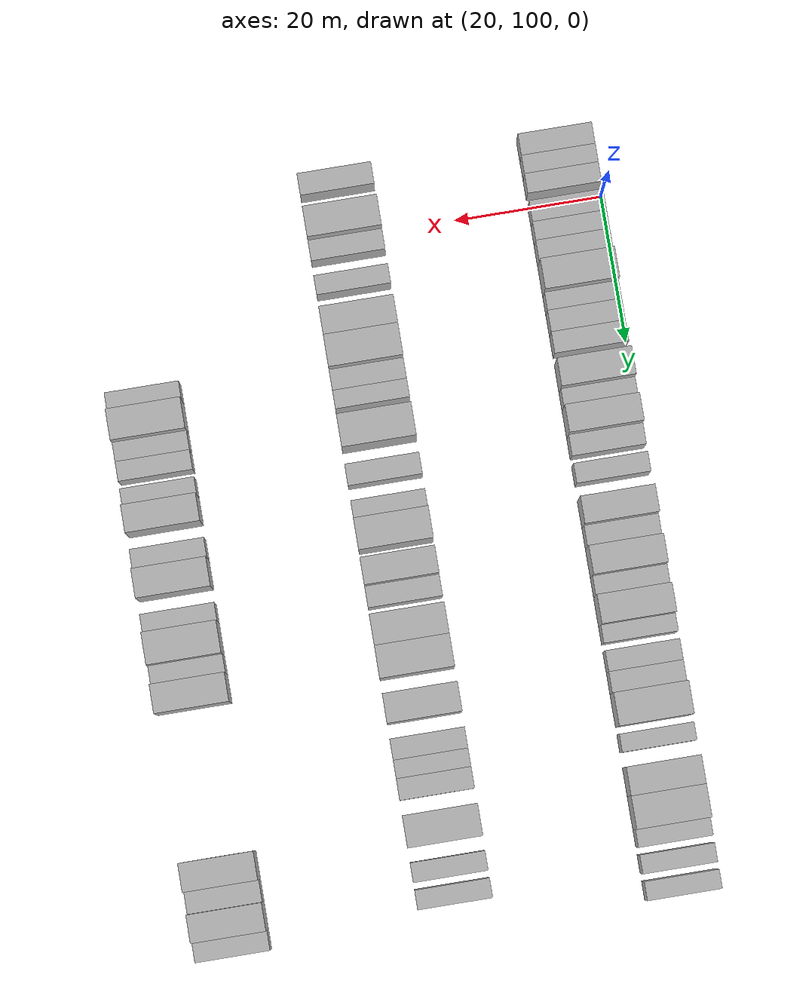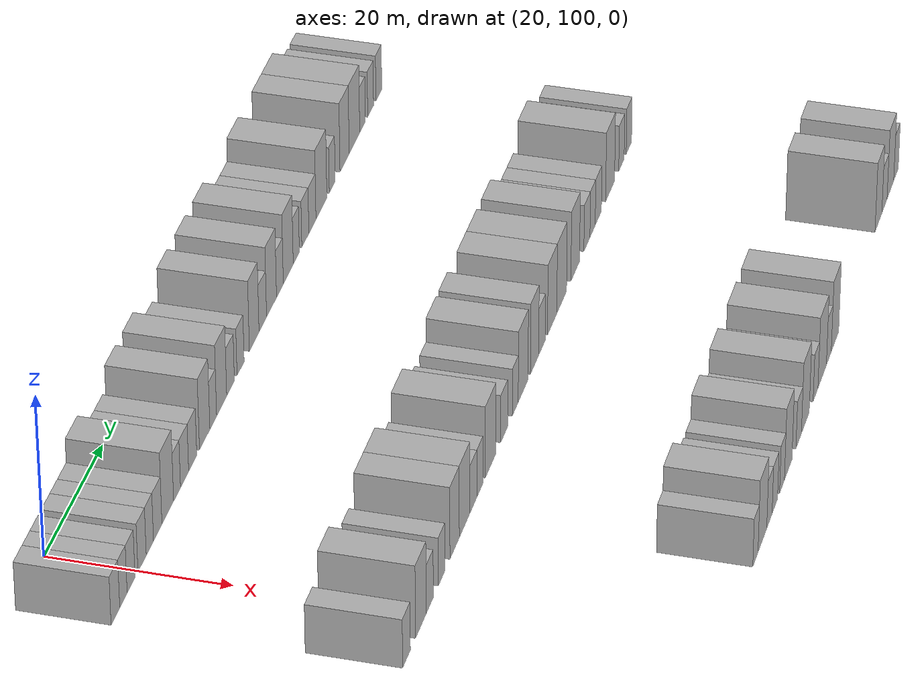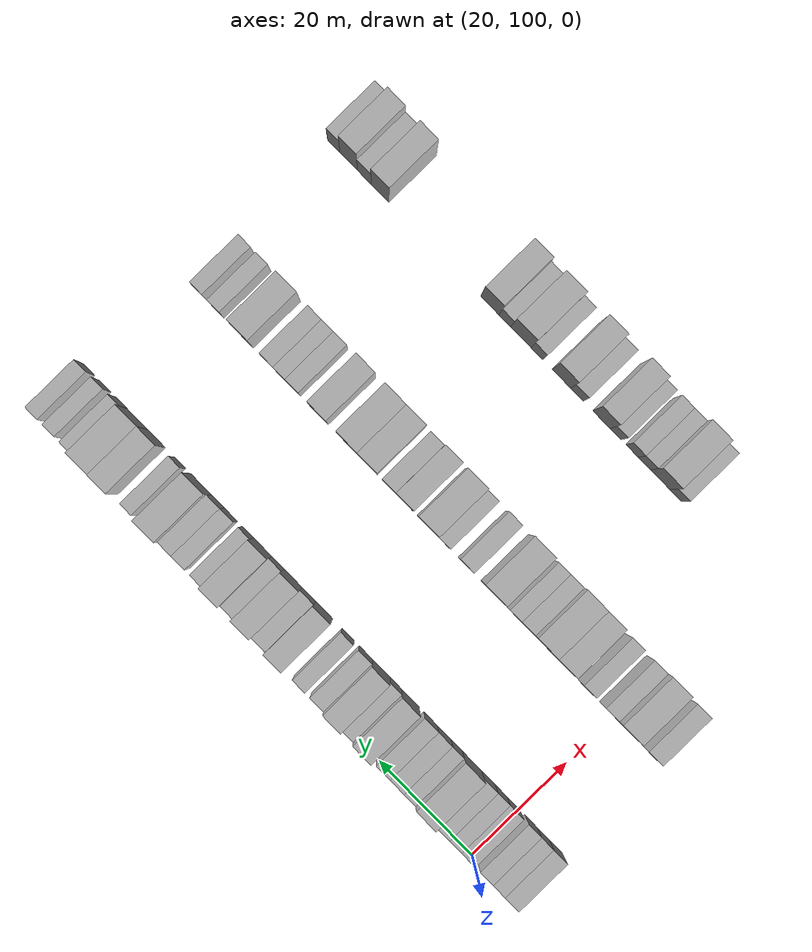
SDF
<sdf version="1.6">
 <world name="default">
  <model name="building_94">
   <static>1</static>
   <pose>25.0000 92.1856 0 0.000000 0.000000 0.000000</pose>
   <link name="link">
    <pose>0 0 3.00 0 0 0</pose>
    <collision name="collision"><geometry><box><size>10.0000 2.9241 6.0000</size></box></geometry></collision>
    <visual name="visual">
     <cast_shadows>0</cast_shadows>
     <geometry><box><size>10.0000 2.9241 6.0000</size></box></geometry>
     <material>
      <script>
       <uri>model://HANNAS_wall/materials/scripts</uri>
       <uri>model://HANNAS_wall/materials/textures</uri>
       <name>vrc/HANNAS_wall</name>
      </script>
     </material>
    </visual>
   </link>
  </model>
  <model name="building_95">
   <static>1</static>
   <pose>25.0000 94.9043 0 0.000000 0.000000 0.000000</pose>
   <link name="link">
    <pose>0 0 3.00 0 0 0</pose>
    <collision name="collision"><geometry><box><size>10.0000 2.5131 6.0000</size></box></geometry></collision>
    <visual name="visual">
     <cast_shadows>0</cast_shadows>
     <geometry><box><size>10.0000 2.5131 6.0000</size></box></geometry>
     <material>
      <script>
       <uri>model://HANNAS_wall/materials/scripts</uri>
       <uri>model://HANNAS_wall/materials/textures</uri>
       <name>vrc/HANNAS_wall</name>
      </script>
     </material>
    </visual>
   </link>
  </model>
  <model name="building_96">
   <static>1</static>
   <pose>25.0000 97.5082 0 0.000000 0.000000 0.000000</pose>
   <link name="link">
    <pose>0 0 3.00 0 0 0</pose>
    <collision name="collision"><geometry><box><size>10.0000 2.6948 6.0000</size></box></geometry></collision>
    <visual name="visual">
     <cast_shadows>0</cast_shadows>
     <geometry><box><size>10.0000 2.6948 6.0000</size></box></geometry>
     <material>
      <script>
       <uri>model://HANNAS_wall/materials/scripts</uri>
       <uri>model://HANNAS_wall/materials/textures</uri>
       <name>vrc/HANNAS_wall</name>
      </script>
     </material>
    </visual>
   </link>
  </model>
  <model name="building_97">
   <static>1</static>
   <pose>25.0000 101.2885 0 0.000000 0.000000 0.000000</pose>
   <link name="link">
    <pose>0 0 3.00 0 0 0</pose>
    <collision name="collision"><geometry><box><size>10.0000 2.8658 6.0000</size></box></geometry></collision>
    <visual name="visual">
     <cast_shadows>0</cast_shadows>
     <geometry><box><size>10.0000 2.8658 6.0000</size></box></geometry>
     <material>
      <script>
       <uri>model://HANNAS_wall/materials/scripts</uri>
       <uri>model://HANNAS_wall/materials/textures</uri>
       <name>vrc/HANNAS_wall</name>
      </script>
     </material>
    </visual>
   </link>
  </model>
  <model name="building_98">
   <static>1</static>
   <pose>25.0000 103.9885 0 0.000000 0.000000 0.000000</pose>
   <link name="link">
    <pose>0 0 3.00 0 0 0</pose>
    <collision name="collision"><geometry><box><size>10.0000 2.5341 6.0000</size></box></geometry></collision>
    <visual name="visual">
     <cast_shadows>0</cast_shadows>
     <geometry><box><size>10.0000 2.5341 6.0000</size></box></geometry>
     <material>
      <script>
       <uri>model://HANNAS_wall/materials/scripts</uri>
       <uri>model://HANNAS_wall/materials/textures</uri>
       <name>vrc/HANNAS_wall</name>
      </script>
     </material>
    </visual>
   </link>
  </model>
  <model name="building_99">
   <static>1</static>
   <pose>25.0000 106.7309 0 0.000000 0.000000 0.000000</pose>
   <link name="link">
    <pose>0 0 3.00 0 0 0</pose>
    <collision name="collision"><geometry><box><size>10.0000 2.9508 6.0000</size></box></geometry></collision>
    <visual name="visual">
     <cast_shadows>0</cast_shadows>
     <geometry><box><size>10.0000 2.9508 6.0000</size></box></geometry>
     <material>
      <script>
       <uri>model://HANNAS_wall/materials/scripts</uri>
       <uri>model://HANNAS_wall/materials/textures</uri>
       <name>vrc/HANNAS_wall</name>
      </script>
     </material>
    </visual>
   </link>
  </model>
  <model name="building_100">
   <static>1</static>
   <pose>25.0000 110.2745 0 0.000000 0.000000 0.000000</pose>
   <link name="link">
    <pose>0 0 4.50 0 0 0</pose>
    <collision name="collision"><geometry><box><size>10.0000 4.1362 9.0000</size></box></geometry></collision>
    <visual name="visual">
     <cast_shadows>0</cast_shadows>
     <geometry><box><size>10.0000 4.1362 9.0000</size></box></geometry>
     <material>
      <script>
       <uri>model://HANNAS_wall/materials/scripts</uri>
       <uri>model://HANNAS_wall/materials/textures</uri>
       <name>vrc/HANNAS_wall</name>
      </script>
     </material>
    </visual>
   </link>
  </model>
  <model name="building_101">
   <static>1</static>
   <pose>25.0000 113.5658 0 0.000000 0.000000 0.000000</pose>
   <link name="link">
    <pose>0 0 3.00 0 0 0</pose>
    <collision name="collision"><geometry><box><size>10.0000 2.4465 6.0000</size></box></geometry></collision>
    <visual name="visual">
     <cast_shadows>0</cast_shadows>
     <geometry><box><size>10.0000 2.4465 6.0000</size></box></geometry>
     <material>
      <script>
       <uri>model://HANNAS_wall/materials/scripts</uri>
       <uri>model://HANNAS_wall/materials/textures</uri>
       <name>vrc/HANNAS_wall</name>
      </script>
     </material>
    </visual>
   </link>
  </model>
  <model name="building_102">
   <static>1</static>
   <pose>25.0000 116.2530 0 0.000000 0.000000 0.000000</pose>
   <link name="link">
    <pose>0 0 3.00 0 0 0</pose>
    <collision name="collision"><geometry><box><size>10.0000 2.9277 6.0000</size></box></geometry></collision>
    <visual name="visual">
     <cast_shadows>0</cast_shadows>
     <geometry><box><size>10.0000 2.9277 6.0000</size></box></geometry>
     <material>
      <script>
       <uri>model://HANNAS_wall/materials/scripts</uri>
       <uri>model://HANNAS_wall/materials/textures</uri>
       <name>vrc/HANNAS_wall</name>
      </script>
     </material>
    </visual>
   </link>
  </model>
  <model name="building_103">
   <static>1</static>
   <pose>25.0000 119.1795 0 0.000000 0.000000 0.000000</pose>
   <link name="link">
    <pose>0 0 3.00 0 0 0</pose>
    <collision name="collision"><geometry><box><size>10.0000 2.9253 6.0000</size></box></geometry></collision>
    <visual name="visual">
     <cast_shadows>0</cast_shadows>
     <geometry><box><size>10.0000 2.9253 6.0000</size></box></geometry>
     <material>
      <script>
       <uri>model://HANNAS_wall/materials/scripts</uri>
       <uri>model://HANNAS_wall/materials/textures</uri>
       <name>vrc/HANNAS_wall</name>
      </script>
     </material>
    </visual>
   </link>
  </model>
  <model name="building_104">
   <static>1</static>
   <pose>25.0000 123.5432 0 0.000000 0.000000 0.000000</pose>
   <link name="link">
    <pose>0 0 4.50 0 0 0</pose>
    <collision name="collision"><geometry><box><size>10.0000 3.8021 9.0000</size></box></geometry></collision>
    <visual name="visual">
     <cast_shadows>0</cast_shadows>
     <geometry><box><size>10.0000 3.8021 9.0000</size></box></geometry>
     <material>
      <script>
       <uri>model://HANNAS_wall/materials/scripts</uri>
       <uri>model://HANNAS_wall/materials/textures</uri>
       <name>vrc/HANNAS_wall</name>
      </script>
     </material>
    </visual>
   </link>
  </model>
  <model name="building_105">
   <static>1</static>
   <pose>25.0000 126.6837 0 0.000000 0.000000 0.000000</pose>
   <link name="link">
    <pose>0 0 3.00 0 0 0</pose>
    <collision name="collision"><geometry><box><size>10.0000 2.4789 6.0000</size></box></geometry></collision>
    <visual name="visual">
     <cast_shadows>0</cast_shadows>
     <geometry><box><size>10.0000 2.4789 6.0000</size></box></geometry>
     <material>
      <script>
       <uri>model://HANNAS_wall/materials/scripts</uri>
       <uri>model://HANNAS_wall/materials/textures</uri>
       <name>vrc/HANNAS_wall</name>
      </script>
     </material>
    </visual>
   </link>
  </model>
  <model name="building_106">
   <static>1</static>
   <pose>25.0000 129.7992 0 0.000000 0.000000 0.000000</pose>
   <link name="link">
    <pose>0 0 4.50 0 0 0</pose>
    <collision name="collision"><geometry><box><size>10.0000 3.7522 9.0000</size></box></geometry></collision>
    <visual name="visual">
     <cast_shadows>0</cast_shadows>
     <geometry><box><size>10.0000 3.7522 9.0000</size></box></geometry>
     <material>
      <script>
       <uri>model://HANNAS_wall/materials/scripts</uri>
       <uri>model://HANNAS_wall/materials/textures</uri>
       <name>vrc/HANNAS_wall</name>
      </script>
     </material>
    </visual>
   </link>
  </model>
  <model name="building_107">
   <static>1</static>
   <pose>25.0000 133.1132 0 0.000000 0.000000 0.000000</pose>
   <link name="link">
    <pose>0 0 3.00 0 0 0</pose>
    <collision name="collision"><geometry><box><size>10.0000 2.8758 6.0000</size></box></geometry></collision>
    <visual name="visual">
     <cast_shadows>0</cast_shadows>
     <geometry><box><size>10.0000 2.8758 6.0000</size></box></geometry>
     <material>
      <script>
       <uri>model://HANNAS_wall/materials/scripts</uri>
       <uri>model://HANNAS_wall/materials/textures</uri>
       <name>vrc/HANNAS_wall</name>
      </script>
     </material>
    </visual>
   </link>
  </model>
  <model name="building_108">
   <static>1</static>
   <pose>25.0000 136.8943 0 0.000000 0.000000 0.000000</pose>
   <link name="link">
    <pose>0 0 3.00 0 0 0</pose>
    <collision name="collision"><geometry><box><size>10.0000 2.6863 6.0000</size></box></geometry></collision>
    <visual name="visual">
     <cast_shadows>0</cast_shadows>
     <geometry><box><size>10.0000 2.6863 6.0000</size></box></geometry>
     <material>
      <script>
       <uri>model://HANNAS_wall/materials/scripts</uri>
       <uri>model://HANNAS_wall/materials/textures</uri>
       <name>vrc/HANNAS_wall</name>
      </script>
     </material>
    </visual>
   </link>
  </model>
  <model name="building_109">
   <static>1</static>
   <pose>25.0000 142.0820 0 0.000000 0.000000 0.000000</pose>
   <link name="link">
    <pose>0 0 4.50 0 0 0</pose>
    <collision name="collision"><geometry><box><size>10.0000 3.6891 9.0000</size></box></geometry></collision>
    <visual name="visual">
     <cast_shadows>0</cast_shadows>
     <geometry><box><size>10.0000 3.6891 9.0000</size></box></geometry>
     <material>
      <script>
       <uri>model://HANNAS_wall/materials/scripts</uri>
       <uri>model://HANNAS_wall/materials/textures</uri>
       <name>vrc/HANNAS_wall</name>
      </script>
     </material>
    </visual>
   </link>
  </model>
  <model name="building_110">
   <static>1</static>
   <pose>25.0000 145.3832 0 0.000000 0.000000 0.000000</pose>
   <link name="link">
    <pose>0 0 3.00 0 0 0</pose>
    <collision name="collision"><geometry><box><size>10.0000 2.9133 6.0000</size></box></geometry></collision>
    <visual name="visual">
     <cast_shadows>0</cast_shadows>
     <geometry><box><size>10.0000 2.9133 6.0000</size></box></geometry>
     <material>
      <script>
       <uri>model://HANNAS_wall/materials/scripts</uri>
       <uri>model://HANNAS_wall/materials/textures</uri>
       <name>vrc/HANNAS_wall</name>
      </script>
     </material>
    </visual>
   </link>
  </model>
  <model name="building_111">
   <static>1</static>
   <pose>25.0000 148.7778 0 0.000000 0.000000 0.000000</pose>
   <link name="link">
    <pose>0 0 4.50 0 0 0</pose>
    <collision name="collision"><geometry><box><size>10.0000 3.8758 9.0000</size></box></geometry></collision>
    <visual name="visual">
     <cast_shadows>0</cast_shadows>
     <geometry><box><size>10.0000 3.8758 9.0000</size></box></geometry>
     <material>
      <script>
       <uri>model://HANNAS_wall/materials/scripts</uri>
       <uri>model://HANNAS_wall/materials/textures</uri>
       <name>vrc/HANNAS_wall</name>
      </script>
     </material>
    </visual>
   </link>
  </model>
  <model name="building_112">
   <static>1</static>
   <pose>25.0000 152.0493 0 0.000000 0.000000 0.000000</pose>
   <link name="link">
    <pose>0 0 3.00 0 0 0</pose>
    <collision name="collision"><geometry><box><size>10.0000 2.6670 6.0000</size></box></geometry></collision>
    <visual name="visual">
     <cast_shadows>0</cast_shadows>
     <geometry><box><size>10.0000 2.6670 6.0000</size></box></geometry>
     <material>
      <script>
       <uri>model://HANNAS_wall/materials/scripts</uri>
       <uri>model://HANNAS_wall/materials/textures</uri>
       <name>vrc/HANNAS_wall</name>
      </script>
     </material>
    </visual>
   </link>
  </model>
  <model name="building_113">
   <static>1</static>
   <pose>25.0000 155.3504 0 0.000000 0.000000 0.000000</pose>
   <link name="link">
    <pose>0 0 4.50 0 0 0</pose>
    <collision name="collision"><geometry><box><size>10.0000 3.9352 9.0000</size></box></geometry></collision>
    <visual name="visual">
     <cast_shadows>0</cast_shadows>
     <geometry><box><size>10.0000 3.9352 9.0000</size></box></geometry>
     <material>
      <script>
       <uri>model://HANNAS_wall/materials/scripts</uri>
       <uri>model://HANNAS_wall/materials/textures</uri>
       <name>vrc/HANNAS_wall</name>
      </script>
     </material>
    </visual>
   </link>
  </model>
  <model name="building_114">
   <static>1</static>
   <pose>25.0000 158.5378 0 0.000000 0.000000 0.000000</pose>
   <link name="link">
    <pose>0 0 3.00 0 0 0</pose>
    <collision name="collision"><geometry><box><size>10.0000 2.4395 6.0000</size></box></geometry></collision>
    <visual name="visual">
     <cast_shadows>0</cast_shadows>
     <geometry><box><size>10.0000 2.4395 6.0000</size></box></geometry>
     <material>
      <script>
       <uri>model://HANNAS_wall/materials/scripts</uri>
       <uri>model://HANNAS_wall/materials/textures</uri>
       <name>vrc/HANNAS_wall</name>
      </script>
     </material>
    </visual>
   </link>
  </model>
  <model name="building_115">
   <static>1</static>
   <pose>25.0000 162.1688 0 0.000000 0.000000 0.000000</pose>
   <link name="link">
    <pose>0 0 3.00 0 0 0</pose>
    <collision name="collision"><geometry><box><size>10.0000 2.8226 6.0000</size></box></geometry></collision>
    <visual name="visual">
     <cast_shadows>0</cast_shadows>
     <geometry><box><size>10.0000 2.8226 6.0000</size></box></geometry>
     <material>
      <script>
       <uri>model://HANNAS_wall/materials/scripts</uri>
       <uri>model://HANNAS_wall/materials/textures</uri>
       <name>vrc/HANNAS_wall</name>
      </script>
     </material>
    </visual>
   </link>
  </model>
  <model name="building_116">
   <static>1</static>
   <pose>25.0000 165.0197 0 0.000000 0.000000 0.000000</pose>
   <link name="link">
    <pose>0 0 3.00 0 0 0</pose>
    <collision name="collision"><geometry><box><size>10.0000 2.8792 6.0000</size></box></geometry></collision>
    <visual name="visual">
     <cast_shadows>0</cast_shadows>
     <geometry><box><size>10.0000 2.8792 6.0000</size></box></geometry>
     <material>
      <script>
       <uri>model://HANNAS_wall/materials/scripts</uri>
       <uri>model://HANNAS_wall/materials/textures</uri>
       <name>vrc/HANNAS_wall</name>
      </script>
     </material>
    </visual>
   </link>
  </model>
  <model name="building_117">
   <static>1</static>
   <pose>25.0000 168.6905 0 0.000000 0.000000 0.000000</pose>
   <link name="link">
    <pose>0 0 4.50 0 0 0</pose>
    <collision name="collision"><geometry><box><size>10.0000 4.4623 9.0000</size></box></geometry></collision>
    <visual name="visual">
     <cast_shadows>0</cast_shadows>
     <geometry><box><size>10.0000 4.4623 9.0000</size></box></geometry>
     <material>
      <script>
       <uri>model://HANNAS_wall/materials/scripts</uri>
       <uri>model://HANNAS_wall/materials/textures</uri>
       <name>vrc/HANNAS_wall</name>
      </script>
     </material>
    </visual>
   </link>
  </model>
  <model name="building_118">
   <static>1</static>
   <pose>25.0000 173.1376 0 0.000000 0.000000 0.000000</pose>
   <link name="link">
    <pose>0 0 3.00 0 0 0</pose>
    <collision name="collision"><geometry><box><size>10.0000 2.4320 6.0000</size></box></geometry></collision>
    <visual name="visual">
     <cast_shadows>0</cast_shadows>
     <geometry><box><size>10.0000 2.4320 6.0000</size></box></geometry>
     <material>
      <script>
       <uri>model://HANNAS_wall/materials/scripts</uri>
       <uri>model://HANNAS_wall/materials/textures</uri>
       <name>vrc/HANNAS_wall</name>
      </script>
     </material>
    </visual>
   </link>
  </model>
  <model name="building_119">
   <static>1</static>
   <pose>25.0000 178.2731 0 0.000000 0.000000 0.000000</pose>
   <link name="link">
    <pose>0 0 4.50 0 0 0</pose>
    <collision name="collision"><geometry><box><size>10.0000 3.8389 9.0000</size></box></geometry></collision>
    <visual name="visual">
     <cast_shadows>0</cast_shadows>
     <geometry><box><size>10.0000 3.8389 9.0000</size></box></geometry>
     <material>
      <script>
       <uri>model://HANNAS_wall/materials/scripts</uri>
       <uri>model://HANNAS_wall/materials/textures</uri>
       <name>vrc/HANNAS_wall</name>
      </script>
     </material>
    </visual>
   </link>
  </model>
  <model name="building_120">
   <static>1</static>
   <pose>25.0000 182.4150 0 0.000000 0.000000 0.000000</pose>
   <link name="link">
    <pose>0 0 4.50 0 0 0</pose>
    <collision name="collision"><geometry><box><size>10.0000 4.4450 9.0000</size></box></geometry></collision>
    <visual name="visual">
     <cast_shadows>0</cast_shadows>
     <geometry><box><size>10.0000 4.4450 9.0000</size></box></geometry>
     <material>
      <script>
       <uri>model://HANNAS_wall/materials/scripts</uri>
       <uri>model://HANNAS_wall/materials/textures</uri>
       <name>vrc/HANNAS_wall</name>
      </script>
     </material>
    </visual>
   </link>
  </model>
  <model name="building_121">
   <static>1</static>
   <pose>25.0000 185.8435 0 0.000000 0.000000 0.000000</pose>
   <link name="link">
    <pose>0 0 3.00 0 0 0</pose>
    <collision name="collision"><geometry><box><size>10.0000 2.4121 6.0000</size></box></geometry></collision>
    <visual name="visual">
     <cast_shadows>0</cast_shadows>
     <geometry><box><size>10.0000 2.4121 6.0000</size></box></geometry>
     <material>
      <script>
       <uri>model://HANNAS_wall/materials/scripts</uri>
       <uri>model://HANNAS_wall/materials/textures</uri>
       <name>vrc/HANNAS_wall</name>
      </script>
     </material>
    </visual>
   </link>
  </model>
  <model name="building_122">
   <static>1</static>
   <pose>25.0000 189.3142 0 0.000000 0.000000 0.000000</pose>
   <link name="link">
    <pose>0 0 3.00 0 0 0</pose>
    <collision name="collision"><geometry><box><size>10.0000 2.5292 6.0000</size></box></geometry></collision>
    <visual name="visual">
     <cast_shadows>0</cast_shadows>
     <geometry><box><size>10.0000 2.5292 6.0000</size></box></geometry>
     <material>
      <script>
       <uri>model://HANNAS_wall/materials/scripts</uri>
       <uri>model://HANNAS_wall/materials/textures</uri>
       <name>vrc/HANNAS_wall</name>
      </script>
     </material>
    </visual>
   </link>
  </model>
  <model name="building_123">
   <static>1</static>
   <pose>25.0000 192.8524 0 0.000000 0.000000 0.000000</pose>
   <link name="link">
    <pose>0 0 3.00 0 0 0</pose>
    <collision name="collision"><geometry><box><size>10.0000 2.5472 6.0000</size></box></geometry></collision>
    <visual name="visual">
     <cast_shadows>0</cast_shadows>
     <geometry><box><size>10.0000 2.5472 6.0000</size></box></geometry>
     <material>
      <script>
       <uri>model://HANNAS_wall/materials/scripts</uri>
       <uri>model://HANNAS_wall/materials/textures</uri>
       <name>vrc/HANNAS_wall</name>
      </script>
     </material>
    </visual>
   </link>
  </model>
  <model name="building_233">
   <static>1</static>
   <pose>55.0000 92.6903 0 0.000000 0.000000 0.000000</pose>
   <link name="link">
    <pose>0 0 3.00 0 0 0</pose>
    <collision name="collision"><geometry><box><size>10.0000 2.9807 6.0000</size></box></geometry></collision>
    <visual name="visual">
     <cast_shadows>0</cast_shadows>
     <geometry><box><size>10.0000 2.9807 6.0000</size></box></geometry>
     <material>
      <script>
       <uri>model://HANNAS_wall/materials/scripts</uri>
       <uri>model://HANNAS_wall/materials/textures</uri>
       <name>vrc/HANNAS_wall</name>
      </script>
     </material>
    </visual>
   </link>
  </model>
  <model name="building_234">
   <static>1</static>
   <pose>55.0000 98.2577 0 0.000000 0.000000 0.000000</pose>
   <link name="link">
    <pose>0 0 4.50 0 0 0</pose>
    <collision name="collision"><geometry><box><size>10.0000 4.1539 9.0000</size></box></geometry></collision>
    <visual name="visual">
     <cast_shadows>0</cast_shadows>
     <geometry><box><size>10.0000 4.1539 9.0000</size></box></geometry>
     <material>
      <script>
       <uri>model://HANNAS_wall/materials/scripts</uri>
       <uri>model://HANNAS_wall/materials/textures</uri>
       <name>vrc/HANNAS_wall</name>
      </script>
     </material>
    </visual>
   </link>
  </model>
  <model name="building_235">
   <static>1</static>
   <pose>55.0000 101.7329 0 0.000000 0.000000 0.000000</pose>
   <link name="link">
    <pose>0 0 3.00 0 0 0</pose>
    <collision name="collision"><geometry><box><size>10.0000 2.7966 6.0000</size></box></geometry></collision>
    <visual name="visual">
     <cast_shadows>0</cast_shadows>
     <geometry><box><size>10.0000 2.7966 6.0000</size></box></geometry>
     <material>
      <script>
       <uri>model://HANNAS_wall/materials/scripts</uri>
       <uri>model://HANNAS_wall/materials/textures</uri>
       <name>vrc/HANNAS_wall</name>
      </script>
     </material>
    </visual>
   </link>
  </model>
  <model name="building_236">
   <static>1</static>
   <pose>55.0000 106.4436 0 0.000000 0.000000 0.000000</pose>
   <link name="link">
    <pose>0 0 3.00 0 0 0</pose>
    <collision name="collision"><geometry><box><size>10.0000 2.6247 6.0000</size></box></geometry></collision>
    <visual name="visual">
     <cast_shadows>0</cast_shadows>
     <geometry><box><size>10.0000 2.6247 6.0000</size></box></geometry>
     <material>
      <script>
       <uri>model://HANNAS_wall/materials/scripts</uri>
       <uri>model://HANNAS_wall/materials/textures</uri>
       <name>vrc/HANNAS_wall</name>
      </script>
     </material>
    </visual>
   </link>
  </model>
  <model name="building_237">
   <static>1</static>
   <pose>55.0000 111.6458 0 0.000000 0.000000 0.000000</pose>
   <link name="link">
    <pose>0 0 4.50 0 0 0</pose>
    <collision name="collision"><geometry><box><size>10.0000 3.7799 9.0000</size></box></geometry></collision>
    <visual name="visual">
     <cast_shadows>0</cast_shadows>
     <geometry><box><size>10.0000 3.7799 9.0000</size></box></geometry>
     <material>
      <script>
       <uri>model://HANNAS_wall/materials/scripts</uri>
       <uri>model://HANNAS_wall/materials/textures</uri>
       <name>vrc/HANNAS_wall</name>
      </script>
     </material>
    </visual>
   </link>
  </model>
  <model name="building_238">
   <static>1</static>
   <pose>55.0000 115.7148 0 0.000000 0.000000 0.000000</pose>
   <link name="link">
    <pose>0 0 4.50 0 0 0</pose>
    <collision name="collision"><geometry><box><size>10.0000 4.3580 9.0000</size></box></geometry></collision>
    <visual name="visual">
     <cast_shadows>0</cast_shadows>
     <geometry><box><size>10.0000 4.3580 9.0000</size></box></geometry>
     <material>
      <script>
       <uri>model://HANNAS_wall/materials/scripts</uri>
       <uri>model://HANNAS_wall/materials/textures</uri>
       <name>vrc/HANNAS_wall</name>
      </script>
     </material>
    </visual>
   </link>
  </model>
  <model name="building_239">
   <static>1</static>
   <pose>55.0000 119.3050 0 0.000000 0.000000 0.000000</pose>
   <link name="link">
    <pose>0 0 3.00 0 0 0</pose>
    <collision name="collision"><geometry><box><size>10.0000 2.8224 6.0000</size></box></geometry></collision>
    <visual name="visual">
     <cast_shadows>0</cast_shadows>
     <geometry><box><size>10.0000 2.8224 6.0000</size></box></geometry>
     <material>
      <script>
       <uri>model://HANNAS_wall/materials/scripts</uri>
       <uri>model://HANNAS_wall/materials/textures</uri>
       <name>vrc/HANNAS_wall</name>
      </script>
     </material>
    </visual>
   </link>
  </model>
  <model name="building_240">
   <static>1</static>
   <pose>55.0000 121.9758 0 0.000000 0.000000 0.000000</pose>
   <link name="link">
    <pose>0 0 3.00 0 0 0</pose>
    <collision name="collision"><geometry><box><size>10.0000 2.5193 6.0000</size></box></geometry></collision>
    <visual name="visual">
     <cast_shadows>0</cast_shadows>
     <geometry><box><size>10.0000 2.5193 6.0000</size></box></geometry>
     <material>
      <script>
       <uri>model://HANNAS_wall/materials/scripts</uri>
       <uri>model://HANNAS_wall/materials/textures</uri>
       <name>vrc/HANNAS_wall</name>
      </script>
     </material>
    </visual>
   </link>
  </model>
  <model name="building_241">
   <static>1</static>
   <pose>55.0000 126.4719 0 0.000000 0.000000 0.000000</pose>
   <link name="link">
    <pose>0 0 4.50 0 0 0</pose>
    <collision name="collision"><geometry><box><size>10.0000 4.4729 9.0000</size></box></geometry></collision>
    <visual name="visual">
     <cast_shadows>0</cast_shadows>
     <geometry><box><size>10.0000 4.4729 9.0000</size></box></geometry>
     <material>
      <script>
       <uri>model://HANNAS_wall/materials/scripts</uri>
       <uri>model://HANNAS_wall/materials/textures</uri>
       <name>vrc/HANNAS_wall</name>
      </script>
     </material>
    </visual>
   </link>
  </model>
  <model name="building_242">
   <static>1</static>
   <pose>55.0000 132.1715 0 0.000000 0.000000 0.000000</pose>
   <link name="link">
    <pose>0 0 3.00 0 0 0</pose>
    <collision name="collision"><geometry><box><size>10.0000 2.9263 6.0000</size></box></geometry></collision>
    <visual name="visual">
     <cast_shadows>0</cast_shadows>
     <geometry><box><size>10.0000 2.9263 6.0000</size></box></geometry>
     <material>
      <script>
       <uri>model://HANNAS_wall/materials/scripts</uri>
       <uri>model://HANNAS_wall/materials/textures</uri>
       <name>vrc/HANNAS_wall</name>
      </script>
     </material>
    </visual>
   </link>
  </model>
  <model name="building_243">
   <static>1</static>
   <pose>55.0000 136.9166 0 0.000000 0.000000 0.000000</pose>
   <link name="link">
    <pose>0 0 3.00 0 0 0</pose>
    <collision name="collision"><geometry><box><size>10.0000 2.5640 6.0000</size></box></geometry></collision>
    <visual name="visual">
     <cast_shadows>0</cast_shadows>
     <geometry><box><size>10.0000 2.5640 6.0000</size></box></geometry>
     <material>
      <script>
       <uri>model://HANNAS_wall/materials/scripts</uri>
       <uri>model://HANNAS_wall/materials/textures</uri>
       <name>vrc/HANNAS_wall</name>
      </script>
     </material>
    </visual>
   </link>
  </model>
  <model name="building_244">
   <static>1</static>
   <pose>55.0000 140.3405 0 0.000000 0.000000 0.000000</pose>
   <link name="link">
    <pose>0 0 4.50 0 0 0</pose>
    <collision name="collision"><geometry><box><size>10.0000 4.2837 9.0000</size></box></geometry></collision>
    <visual name="visual">
     <cast_shadows>0</cast_shadows>
     <geometry><box><size>10.0000 4.2837 9.0000</size></box></geometry>
     <material>
      <script>
       <uri>model://HANNAS_wall/materials/scripts</uri>
       <uri>model://HANNAS_wall/materials/textures</uri>
       <name>vrc/HANNAS_wall</name>
      </script>
     </material>
    </visual>
   </link>
  </model>
  <model name="building_245">
   <static>1</static>
   <pose>55.0000 145.3233 0 0.000000 0.000000 0.000000</pose>
   <link name="link">
    <pose>0 0 4.50 0 0 0</pose>
    <collision name="collision"><geometry><box><size>10.0000 3.6820 9.0000</size></box></geometry></collision>
    <visual name="visual">
     <cast_shadows>0</cast_shadows>
     <geometry><box><size>10.0000 3.6820 9.0000</size></box></geometry>
     <material>
      <script>
       <uri>model://HANNAS_wall/materials/scripts</uri>
       <uri>model://HANNAS_wall/materials/textures</uri>
       <name>vrc/HANNAS_wall</name>
      </script>
     </material>
    </visual>
   </link>
  </model>
  <model name="building_246">
   <static>1</static>
   <pose>55.0000 148.6158 0 0.000000 0.000000 0.000000</pose>
   <link name="link">
    <pose>0 0 3.00 0 0 0</pose>
    <collision name="collision"><geometry><box><size>10.0000 2.9030 6.0000</size></box></geometry></collision>
    <visual name="visual">
     <cast_shadows>0</cast_shadows>
     <geometry><box><size>10.0000 2.9030 6.0000</size></box></geometry>
     <material>
      <script>
       <uri>model://HANNAS_wall/materials/scripts</uri>
       <uri>model://HANNAS_wall/materials/textures</uri>
       <name>vrc/HANNAS_wall</name>
      </script>
     </material>
    </visual>
   </link>
  </model>
  <model name="building_247">
   <static>1</static>
   <pose>55.0000 153.1550 0 0.000000 0.000000 0.000000</pose>
   <link name="link">
    <pose>0 0 4.50 0 0 0</pose>
    <collision name="collision"><geometry><box><size>10.0000 4.1754 9.0000</size></box></geometry></collision>
    <visual name="visual">
     <cast_shadows>0</cast_shadows>
     <geometry><box><size>10.0000 4.1754 9.0000</size></box></geometry>
     <material>
      <script>
       <uri>model://HANNAS_wall/materials/scripts</uri>
       <uri>model://HANNAS_wall/materials/textures</uri>
       <name>vrc/HANNAS_wall</name>
      </script>
     </material>
    </visual>
   </link>
  </model>
  <model name="building_248">
   <static>1</static>
   <pose>55.0000 157.4451 0 0.000000 0.000000 0.000000</pose>
   <link name="link">
    <pose>0 0 4.50 0 0 0</pose>
    <collision name="collision"><geometry><box><size>10.0000 4.4048 9.0000</size></box></geometry></collision>
    <visual name="visual">
     <cast_shadows>0</cast_shadows>
     <geometry><box><size>10.0000 4.4048 9.0000</size></box></geometry>
     <material>
      <script>
       <uri>model://HANNAS_wall/materials/scripts</uri>
       <uri>model://HANNAS_wall/materials/textures</uri>
       <name>vrc/HANNAS_wall</name>
      </script>
     </material>
    </visual>
   </link>
  </model>
  <model name="building_249">
   <static>1</static>
   <pose>55.0000 163.6390 0 0.000000 0.000000 0.000000</pose>
   <link name="link">
    <pose>0 0 4.50 0 0 0</pose>
    <collision name="collision"><geometry><box><size>10.0000 3.9830 9.0000</size></box></geometry></collision>
    <visual name="visual">
     <cast_shadows>0</cast_shadows>
     <geometry><box><size>10.0000 3.9830 9.0000</size></box></geometry>
     <material>
      <script>
       <uri>model://HANNAS_wall/materials/scripts</uri>
       <uri>model://HANNAS_wall/materials/textures</uri>
       <name>vrc/HANNAS_wall</name>
      </script>
     </material>
    </visual>
   </link>
  </model>
  <model name="building_250">
   <static>1</static>
   <pose>55.0000 169.0469 0 0.000000 0.000000 0.000000</pose>
   <link name="link">
    <pose>0 0 3.00 0 0 0</pose>
    <collision name="collision"><geometry><box><size>10.0000 2.8330 6.0000</size></box></geometry></collision>
    <visual name="visual">
     <cast_shadows>0</cast_shadows>
     <geometry><box><size>10.0000 2.8330 6.0000</size></box></geometry>
     <material>
      <script>
       <uri>model://HANNAS_wall/materials/scripts</uri>
       <uri>model://HANNAS_wall/materials/textures</uri>
       <name>vrc/HANNAS_wall</name>
      </script>
     </material>
    </visual>
   </link>
  </model>
  <model name="building_251">
   <static>1</static>
   <pose>55.0000 171.6985 0 0.000000 0.000000 0.000000</pose>
   <link name="link">
    <pose>0 0 3.00 0 0 0</pose>
    <collision name="collision"><geometry><box><size>10.0000 2.4701 6.0000</size></box></geometry></collision>
    <visual name="visual">
     <cast_shadows>0</cast_shadows>
     <geometry><box><size>10.0000 2.4701 6.0000</size></box></geometry>
     <material>
      <script>
       <uri>model://HANNAS_wall/materials/scripts</uri>
       <uri>model://HANNAS_wall/materials/textures</uri>
       <name>vrc/HANNAS_wall</name>
      </script>
     </material>
    </visual>
   </link>
  </model>
  <model name="building_252">
   <static>1</static>
   <pose>55.0000 174.3896 0 0.000000 0.000000 0.000000</pose>
   <link name="link">
    <pose>0 0 3.00 0 0 0</pose>
    <collision name="collision"><geometry><box><size>10.0000 2.9122 6.0000</size></box></geometry></collision>
    <visual name="visual">
     <cast_shadows>0</cast_shadows>
     <geometry><box><size>10.0000 2.9122 6.0000</size></box></geometry>
     <material>
      <script>
       <uri>model://HANNAS_wall/materials/scripts</uri>
       <uri>model://HANNAS_wall/materials/textures</uri>
       <name>vrc/HANNAS_wall</name>
      </script>
     </material>
    </visual>
   </link>
  </model>
  <model name="building_253">
   <static>1</static>
   <pose>55.0000 179.9971 0 0.000000 0.000000 0.000000</pose>
   <link name="link">
    <pose>0 0 4.50 0 0 0</pose>
    <collision name="collision"><geometry><box><size>10.0000 4.3028 9.0000</size></box></geometry></collision>
    <visual name="visual">
     <cast_shadows>0</cast_shadows>
     <geometry><box><size>10.0000 4.3028 9.0000</size></box></geometry>
     <material>
      <script>
       <uri>model://HANNAS_wall/materials/scripts</uri>
       <uri>model://HANNAS_wall/materials/textures</uri>
       <name>vrc/HANNAS_wall</name>
      </script>
     </material>
    </visual>
   </link>
  </model>
  <model name="building_254">
   <static>1</static>
   <pose>55.0000 185.4600 0 0.000000 0.000000 0.000000</pose>
   <link name="link">
    <pose>0 0 3.00 0 0 0</pose>
    <collision name="collision"><geometry><box><size>10.0000 2.6230 6.0000</size></box></geometry></collision>
    <visual name="visual">
     <cast_shadows>0</cast_shadows>
     <geometry><box><size>10.0000 2.6230 6.0000</size></box></geometry>
     <material>
      <script>
       <uri>model://HANNAS_wall/materials/scripts</uri>
       <uri>model://HANNAS_wall/materials/textures</uri>
       <name>vrc/HANNAS_wall</name>
      </script>
     </material>
    </visual>
   </link>
  </model>
  <model name="building_255">
   <static>1</static>
   <pose>55.0000 189.0816 0 0.000000 0.000000 0.000000</pose>
   <link name="link">
    <pose>0 0 3.00 0 0 0</pose>
    <collision name="collision"><geometry><box><size>10.0000 2.6201 6.0000</size></box></geometry></collision>
    <visual name="visual">
     <cast_shadows>0</cast_shadows>
     <geometry><box><size>10.0000 2.6201 6.0000</size></box></geometry>
     <material>
      <script>
       <uri>model://HANNAS_wall/materials/scripts</uri>
       <uri>model://HANNAS_wall/materials/textures</uri>
       <name>vrc/HANNAS_wall</name>
      </script>
     </material>
    </visual>
   </link>
  </model>
  <model name="building_371">
   <static>1</static>
   <pose>85.0000 117.3737 0 0.000000 0.000000 0.000000</pose>
   <link name="link">
    <pose>0 0 3.00 0 0 0</pose>
    <collision name="collision"><geometry><box><size>10.0000 2.5130 6.0000</size></box></geometry></collision>
    <visual name="visual">
     <cast_shadows>0</cast_shadows>
     <geometry><box><size>10.0000 2.5130 6.0000</size></box></geometry>
     <material>
      <script>
       <uri>model://HANNAS_wall/materials/scripts</uri>
       <uri>model://HANNAS_wall/materials/textures</uri>
       <name>vrc/HANNAS_wall</name>
      </script>
     </material>
    </visual>
   </link>
  </model>
  <model name="building_372">
   <static>1</static>
   <pose>85.0000 120.7294 0 0.000000 0.000000 0.000000</pose>
   <link name="link">
    <pose>0 0 4.50 0 0 0</pose>
    <collision name="collision"><geometry><box><size>10.0000 4.1985 9.0000</size></box></geometry></collision>
    <visual name="visual">
     <cast_shadows>0</cast_shadows>
     <geometry><box><size>10.0000 4.1985 9.0000</size></box></geometry>
     <material>
      <script>
       <uri>model://HANNAS_wall/materials/scripts</uri>
       <uri>model://HANNAS_wall/materials/textures</uri>
       <name>vrc/HANNAS_wall</name>
      </script>
     </material>
    </visual>
   </link>
  </model>
  <model name="building_373">
   <static>1</static>
   <pose>85.0000 124.1280 0 0.000000 0.000000 0.000000</pose>
   <link name="link">
    <pose>0 0 3.00 0 0 0</pose>
    <collision name="collision"><geometry><box><size>10.0000 2.5986 6.0000</size></box></geometry></collision>
    <visual name="visual">
     <cast_shadows>0</cast_shadows>
     <geometry><box><size>10.0000 2.5986 6.0000</size></box></geometry>
     <material>
      <script>
       <uri>model://HANNAS_wall/materials/scripts</uri>
       <uri>model://HANNAS_wall/materials/textures</uri>
       <name>vrc/HANNAS_wall</name>
      </script>
     </material>
    </visual>
   </link>
  </model>
  <model name="building_374">
   <static>1</static>
   <pose>85.0000 126.7644 0 0.000000 0.000000 0.000000</pose>
   <link name="link">
    <pose>0 0 3.00 0 0 0</pose>
    <collision name="collision"><geometry><box><size>10.0000 2.6741 6.0000</size></box></geometry></collision>
    <visual name="visual">
     <cast_shadows>0</cast_shadows>
     <geometry><box><size>10.0000 2.6741 6.0000</size></box></geometry>
     <material>
      <script>
       <uri>model://HANNAS_wall/materials/scripts</uri>
       <uri>model://HANNAS_wall/materials/textures</uri>
       <name>vrc/HANNAS_wall</name>
      </script>
     </material>
    </visual>
   </link>
  </model>
  <model name="building_375">
   <static>1</static>
   <pose>85.0000 130.3030 0 0.000000 0.000000 0.000000</pose>
   <link name="link">
    <pose>0 0 3.00 0 0 0</pose>
    <collision name="collision"><geometry><box><size>10.0000 2.4031 6.0000</size></box></geometry></collision>
    <visual name="visual">
     <cast_shadows>0</cast_shadows>
     <geometry><box><size>10.0000 2.4031 6.0000</size></box></geometry>
     <material>
      <script>
       <uri>model://HANNAS_wall/materials/scripts</uri>
       <uri>model://HANNAS_wall/materials/textures</uri>
       <name>vrc/HANNAS_wall</name>
      </script>
     </material>
    </visual>
   </link>
  </model>
  <model name="building_376">
   <static>1</static>
   <pose>85.0000 133.3838 0 0.000000 0.000000 0.000000</pose>
   <link name="link">
    <pose>0 0 4.50 0 0 0</pose>
    <collision name="collision"><geometry><box><size>10.0000 3.7585 9.0000</size></box></geometry></collision>
    <visual name="visual">
     <cast_shadows>0</cast_shadows>
     <geometry><box><size>10.0000 3.7585 9.0000</size></box></geometry>
     <material>
      <script>
       <uri>model://HANNAS_wall/materials/scripts</uri>
       <uri>model://HANNAS_wall/materials/textures</uri>
       <name>vrc/HANNAS_wall</name>
      </script>
     </material>
    </visual>
   </link>
  </model>
  <model name="building_377">
   <static>1</static>
   <pose>85.0000 138.6493 0 0.000000 0.000000 0.000000</pose>
   <link name="link">
    <pose>0 0 3.00 0 0 0</pose>
    <collision name="collision"><geometry><box><size>10.0000 2.7725 6.0000</size></box></geometry></collision>
    <visual name="visual">
     <cast_shadows>0</cast_shadows>
     <geometry><box><size>10.0000 2.7725 6.0000</size></box></geometry>
     <material>
      <script>
       <uri>model://HANNAS_wall/materials/scripts</uri>
       <uri>model://HANNAS_wall/materials/textures</uri>
       <name>vrc/HANNAS_wall</name>
      </script>
     </material>
    </visual>
   </link>
  </model>
  <model name="building_378">
   <static>1</static>
   <pose>85.0000 142.0223 0 0.000000 0.000000 0.000000</pose>
   <link name="link">
    <pose>0 0 4.50 0 0 0</pose>
    <collision name="collision"><geometry><box><size>10.0000 3.9735 9.0000</size></box></geometry></collision>
    <visual name="visual">
     <cast_shadows>0</cast_shadows>
     <geometry><box><size>10.0000 3.9735 9.0000</size></box></geometry>
     <material>
      <script>
       <uri>model://HANNAS_wall/materials/scripts</uri>
       <uri>model://HANNAS_wall/materials/textures</uri>
       <name>vrc/HANNAS_wall</name>
      </script>
     </material>
    </visual>
   </link>
  </model>
  <model name="building_379">
   <static>1</static>
   <pose>85.0000 147.2665 0 0.000000 0.000000 0.000000</pose>
   <link name="link">
    <pose>0 0 3.00 0 0 0</pose>
    <collision name="collision"><geometry><box><size>10.0000 2.5148 6.0000</size></box></geometry></collision>
    <visual name="visual">
     <cast_shadows>0</cast_shadows>
     <geometry><box><size>10.0000 2.5148 6.0000</size></box></geometry>
     <material>
      <script>
       <uri>model://HANNAS_wall/materials/scripts</uri>
       <uri>model://HANNAS_wall/materials/textures</uri>
       <name>vrc/HANNAS_wall</name>
      </script>
     </material>
    </visual>
   </link>
  </model>
  <model name="building_380">
   <static>1</static>
   <pose>85.0000 150.7206 0 0.000000 0.000000 0.000000</pose>
   <link name="link">
    <pose>0 0 4.50 0 0 0</pose>
    <collision name="collision"><geometry><box><size>10.0000 4.3933 9.0000</size></box></geometry></collision>
    <visual name="visual">
     <cast_shadows>0</cast_shadows>
     <geometry><box><size>10.0000 4.3933 9.0000</size></box></geometry>
     <material>
      <script>
       <uri>model://HANNAS_wall/materials/scripts</uri>
       <uri>model://HANNAS_wall/materials/textures</uri>
       <name>vrc/HANNAS_wall</name>
      </script>
     </material>
    </visual>
   </link>
  </model>
  <model name="building_381">
   <static>1</static>
   <pose>85.0000 154.1917 0 0.000000 0.000000 0.000000</pose>
   <link name="link">
    <pose>0 0 3.00 0 0 0</pose>
    <collision name="collision"><geometry><box><size>10.0000 2.5490 6.0000</size></box></geometry></collision>
    <visual name="visual">
     <cast_shadows>0</cast_shadows>
     <geometry><box><size>10.0000 2.5490 6.0000</size></box></geometry>
     <material>
      <script>
       <uri>model://HANNAS_wall/materials/scripts</uri>
       <uri>model://HANNAS_wall/materials/textures</uri>
       <name>vrc/HANNAS_wall</name>
      </script>
     </material>
    </visual>
   </link>
  </model>
  <model name="building_382">
   <static>1</static>
   <pose>85.0000 157.4300 0 0.000000 0.000000 0.000000</pose>
   <link name="link">
    <pose>0 0 4.50 0 0 0</pose>
    <collision name="collision"><geometry><box><size>10.0000 3.9276 9.0000</size></box></geometry></collision>
    <visual name="visual">
     <cast_shadows>0</cast_shadows>
     <geometry><box><size>10.0000 3.9276 9.0000</size></box></geometry>
     <material>
      <script>
       <uri>model://HANNAS_wall/materials/scripts</uri>
       <uri>model://HANNAS_wall/materials/textures</uri>
       <name>vrc/HANNAS_wall</name>
      </script>
     </material>
    </visual>
   </link>
  </model>
  <model name="building_383">
   <static>1</static>
   <pose>85.0000 181.1507 0 0.000000 0.000000 0.000000</pose>
   <link name="link">
    <pose>0 0 4.50 0 0 0</pose>
    <collision name="collision"><geometry><box><size>10.0000 3.8379 9.0000</size></box></geometry></collision>
    <visual name="visual">
     <cast_shadows>0</cast_shadows>
     <geometry><box><size>10.0000 3.8379 9.0000</size></box></geometry>
     <material>
      <script>
       <uri>model://HANNAS_wall/materials/scripts</uri>
       <uri>model://HANNAS_wall/materials/textures</uri>
       <name>vrc/HANNAS_wall</name>
      </script>
     </material>
    </visual>
   </link>
  </model>
  <model name="building_384">
   <static>1</static>
   <pose>85.0000 184.5526 0 0.000000 0.000000 0.000000</pose>
   <link name="link">
    <pose>0 0 3.00 0 0 0</pose>
    <collision name="collision"><geometry><box><size>10.0000 2.9659 6.0000</size></box></geometry></collision>
    <visual name="visual">
     <cast_shadows>0</cast_shadows>
     <geometry><box><size>10.0000 2.9659 6.0000</size></box></geometry>
     <material>
      <script>
       <uri>model://HANNAS_wall/materials/scripts</uri>
       <uri>model://HANNAS_wall/materials/textures</uri>
       <name>vrc/HANNAS_wall</name>
      </script>
     </material>
    </visual>
   </link>
  </model>
  <model name="building_385">
   <static>1</static>
   <pose>85.0000 187.9220 0 0.000000 0.000000 0.000000</pose>
   <link name="link">
    <pose>0 0 4.50 0 0 0</pose>
    <collision name="collision"><geometry><box><size>10.0000 3.7730 9.0000</size></box></geometry></collision>
    <visual name="visual">
     <cast_shadows>0</cast_shadows>
     <geometry><box><size>10.0000 3.7730 9.0000</size></box></geometry>
     <material>
      <script>
       <uri>model://HANNAS_wall/materials/scripts</uri>
       <uri>model://HANNAS_wall/materials/textures</uri>
       <name>vrc/HANNAS_wall</name>
      </script>
     </material>
    </visual>
   </link>
  </model>
  <model name="building_386">
   <static>1</static>
   <pose>85.0000 191.1317 0 0.000000 0.000000 0.000000</pose>
   <link name="link">
    <pose>0 0 3.00 0 0 0</pose>
    <collision name="collision"><geometry><box><size>10.0000 2.6464 6.0000</size></box></geometry></collision>
    <visual name="visual">
     <cast_shadows>0</cast_shadows>
     <geometry><box><size>10.0000 2.6464 6.0000</size></box></geometry>
     <material>
      <script>
       <uri>model://HANNAS_wall/materials/scripts</uri>
       <uri>model://HANNAS_wall/materials/textures</uri>
       <name>vrc/HANNAS_wall</name>
      </script>
     </material>
    </visual>
   </link>
  </model>
 </world>
</sdf>
